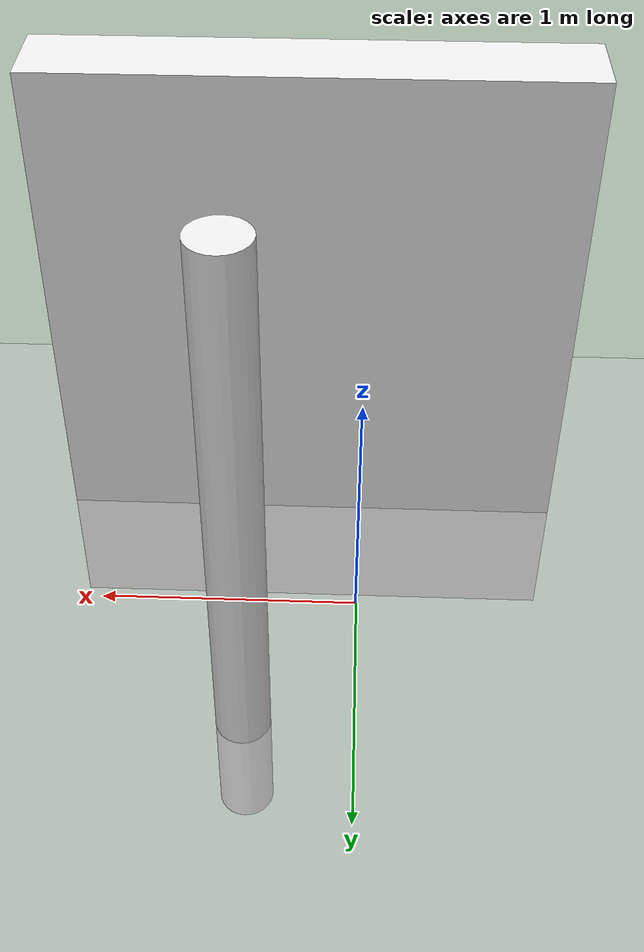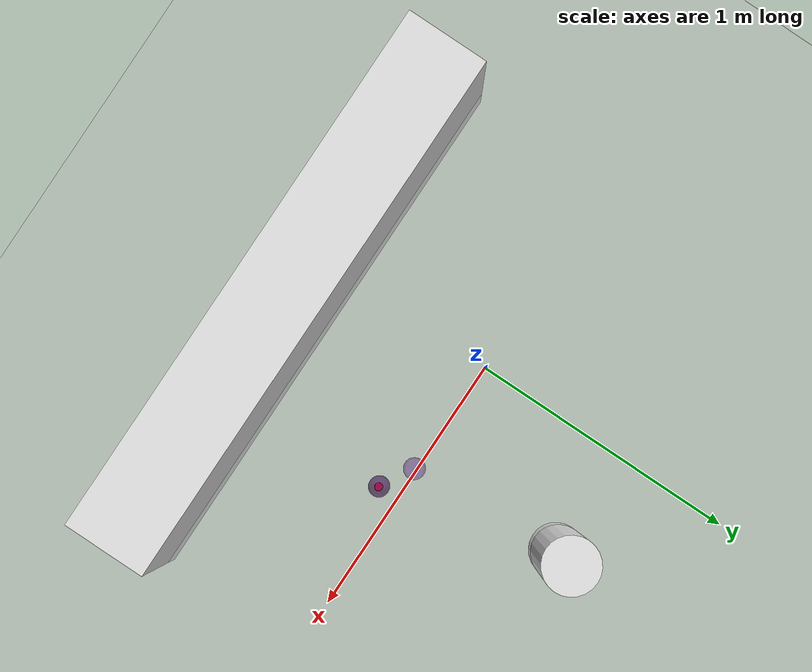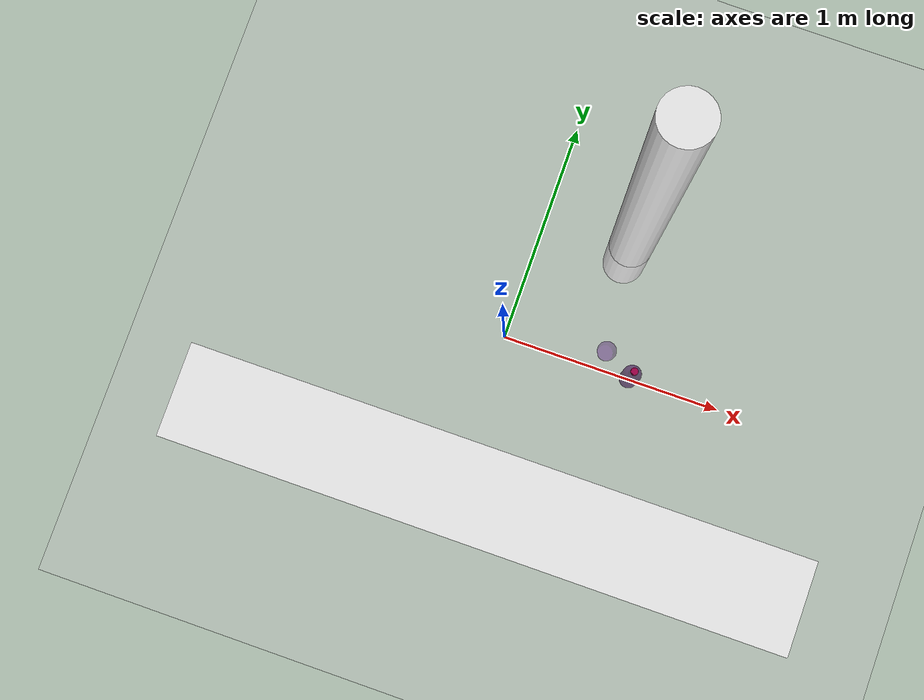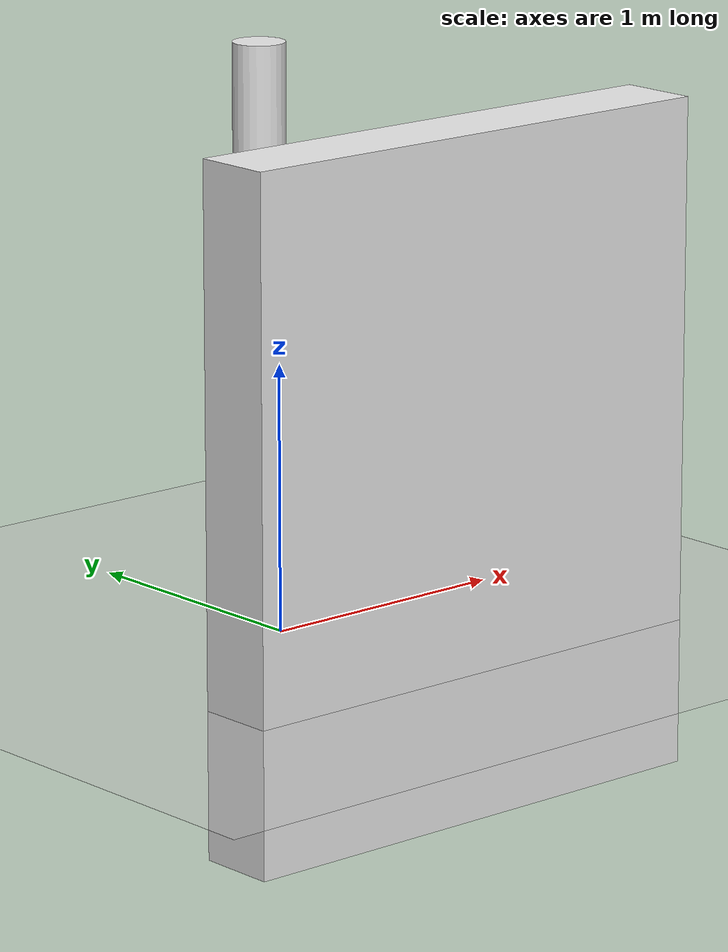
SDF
<sdf version="1.4">
 <world name="wall_column_b">
  <include><uri>model://ground_plane</uri></include>
  <include><uri>model://sun</uri></include>
  <include><uri>model://basic_wall</uri><name>basic_wall1</name><pose>0.2 -0.7 0.7 0 0 0</pose></include>
  <include><uri>model://basic_column</uri><name>basic_column1</name><pose>0.4 0.58 0.8 0 0 0</pose></include>
  <include><uri>model://cup_glass</uri><name>cup_glass1</name><pose>0.43 -0.01 0.745 0 0 0</pose></include>
  <include>
   <uri>model://bottle_red_wine</uri>
   <name>bottle_red_wine1</name>
   <pose>0.55 -0.08 0.7 0 0 0</pose>
  </include>
 </world>
</sdf>

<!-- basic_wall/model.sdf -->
<sdf version='1.4'>
  <model name="basic_wall">
      <static>1</static>
      <link name='link'>
        <collision name='collision'>
          <geometry>
            <box>
              <size>2.0 0.3 2.5</size>
            </box>
          </geometry>
          <surface>
            <friction>
              <ode>
                <mu>5.0</mu>
                <mu2>5.0</mu2>
              </ode>
            </friction>
          </surface>
        </collision>
        <visual name='visual'>
          <geometry>
            <box>
              <size>2.0 0.3 2.5</size>
            </box>
          </geometry>
          <material>
            <script>
              <uri>file://media/materials/scripts/gazebo.material</uri>
              <name>Gazebo/White</name>
            </script>
          </material>
        </visual>
        <self_collide>0</self_collide>
        <kinematic>0</kinematic>
        <gravity>0</gravity>
      </link>
  </model>
</sdf>

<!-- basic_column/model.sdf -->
<sdf version='1.4'>
  <model name="basic_column">
      <static>1</static>
      <link name='link'>
        <collision name='collision'>
          <geometry>
            <cylinder>
              <radius>0.1</radius>
              <length>2.5</length>
            </cylinder>
          </geometry>
          <surface>
            <friction>
              <ode>
                <mu>5.0</mu>
                <mu2>5.0</mu2>
              </ode>
            </friction>
          </surface>
        </collision>
        <visual name='visual'>
          <geometry>
            <cylinder>
              <radius>0.1</radius>
              <length>2.5</length>
            </cylinder>
          </geometry>
          <material>
            <script>
              <uri>file://media/materials/scripts/gazebo.material</uri>
              <name>Gazebo/White</name>
            </script>
          </material>
        </visual>
        <self_collide>0</self_collide>
        <kinematic>0</kinematic>
        <gravity>0</gravity>
      </link>
  </model>
</sdf>

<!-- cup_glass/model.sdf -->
<sdf version='1.6'>
  <model name='cup_glass'>
    <static>1</static>
    <link name='link_16'>
      <self_collide>0</self_collide>
      <kinematic>0</kinematic>
      <gravity>1</gravity>
      <inertial>
        <mass>0.3</mass>
        <inertia>
          <ixx>5e-04</ixx>
          <ixy>0</ixy>
          <ixz>0</ixz>
          <iyy>5e-04</iyy>
          <iyz>0</iyz>
          <izz>5e-04</izz>
        </inertia>
      </inertial>
      <visual name='visual'>
        <pose frame=''>0 0 -0.05 0 -0 0</pose>
        <geometry>
          <mesh>
            <uri>model://cup_glass/meshes/cup_glass.dae</uri>
            <scale>1 1 1</scale>
          </mesh>
        </geometry>
        <material>
          <lighting>1</lighting>
          <ambient>0.325 0.023 0.513 1</ambient>
          <diffuse>0.325 0.023 0.513 1</diffuse>
          <specular>0.01 0.01 0.01 1</specular>
          <emissive>0 0 0 1</emissive>
          <shader type='vertex'>
            <normal_map>__default__</normal_map>
          </shader>
          <script>
            <name>ModelPreview_2::link_16::visual_MATERIAL_</name>
            <uri>__default__</uri>
          </script>
        </material>
        <cast_shadows>1</cast_shadows>
        <transparency>0.6</transparency>
      </visual>
      <collision name='collision'>
        <pose frame=''>0 0 -0.05 0 -0 0</pose>
        <geometry>
          <mesh>
            <uri>/home/mamantov/catkin_ws/src/rosie_motion/models/cup_glass/meshes/cup_glass.dae</uri>
          </mesh>
        </geometry>
        <surface>
          <friction>
            <ode>
              <mu>0.2</mu>
              <mu2>0.2</mu2>
            </ode>
          </friction>
          <contact>
            <ode>
              <kp>1000000.0</kp>
              <kd>100.0</kd>
              <max_vel>1.0</max_vel>
              <min_depth>0.002</min_depth>
            </ode>
          </contact>
        </surface>
      </collision>
    </link>
    <allow_auto_disable>1</allow_auto_disable>
  </model>
</sdf>

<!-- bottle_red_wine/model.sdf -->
<sdf version='1.6'>
  <model name='bottle_red_wine'>
    <link name='link_22'>
      <pose frame=''>-0.038814 -0.033806 0.002754 0 -0 0</pose>
        <visual name='visual'>
        <pose frame=''>0 0 0 0 -0 0</pose>
        <geometry>
          <mesh>
            <uri>model://bottle_red_wine/meshes/bottle.dae</uri>
            <scale>1 1 1</scale>
          </mesh>
        </geometry>
        <material>
          <lighting>1</lighting>
          <ambient>0.215 0 0.305 1</ambient>
          <diffuse>0.215 0 0.305 1</diffuse>
          <specular>0.01 0.01 0.01 1</specular>
          <emissive>0 0 0 1</emissive>
          <shader type='vertex'>
            <normal_map>__default__</normal_map>
          </shader>
        </material>
        <cast_shadows>1</cast_shadows>
        <transparency>0.4</transparency>
      </visual>
      <collision name='collision'>
        <laser_retro>0</laser_retro>
        <max_contacts>10</max_contacts>
        <pose frame=''>0 0 0 0 -0 0</pose>
        <geometry>
          <mesh>
            <uri>model://bottle_red_wine/meshes/bottle.dae</uri>
            <scale>1 1 1</scale>
          </mesh>
        </geometry>
       </collision>
    </link>
    <link name='link_23'>
      <pose frame=''> -0.038814 -0.033806 0.002754 0 -0 0</pose>
      <inertial>
        <mass>1</mass>
        <inertia>
          <ixx>0.166667</ixx>
          <ixy>0</ixy>
          <ixz>0</ixz>
          <iyy>0.166667</iyy>
          <iyz>0</iyz>
          <izz>0.166667</izz>
        </inertia>
        <pose frame=''>0 0 0 0 -0 0</pose>
      </inertial>
      <gravity>1</gravity>
      <self_collide>0</self_collide>
      <kinematic>0</kinematic>
      <visual name='visual'>
        <pose frame=''>0 0 0 0 -0 0</pose>
        <geometry>
          <mesh>
            <uri>model://bottle_red_wine/meshes/cap.dae</uri>
            <scale>1 1 1</scale>
          </mesh>
        </geometry>
        <material>
          <lighting>1</lighting>
          <ambient>0.623 0 0.282 1</ambient>
          <diffuse>0.623 0 0.282 1</diffuse>
          <specular>0.01 0.01 0.01 1</specular>
          <emissive>0 0 0 1</emissive>
          <shader type='vertex'>
            <normal_map>__default__</normal_map>
          </shader>
        </material>
        <cast_shadows>1</cast_shadows>
        <transparency>0</transparency>
      </visual>
      <collision name='collision'>
        <laser_retro>0</laser_retro>
        <max_contacts>10</max_contacts>
        <pose frame=''>0 0 0 0 -0 0</pose>
        <geometry>
          <mesh>
            <uri>model://bottle_red_wine/meshes/cap.dae</uri>
            <scale>1 1 1</scale>
          </mesh>
        </geometry>

      </collision>
    </link>
    <static>1</static>
    <allow_auto_disable>1</allow_auto_disable>
  </model>
</sdf>
